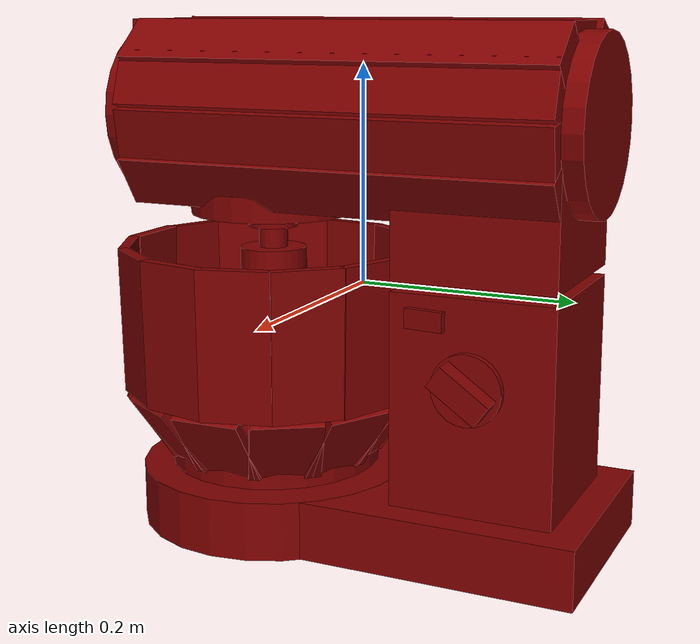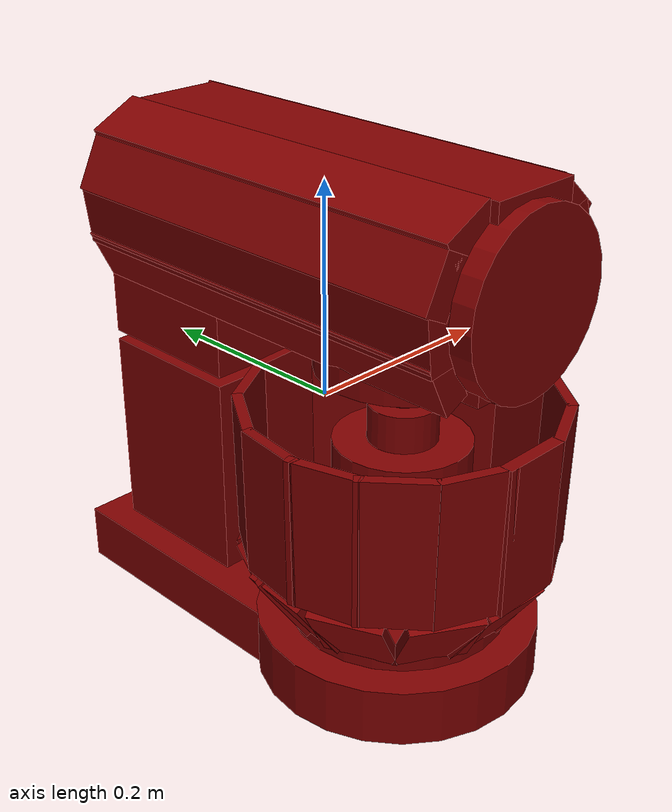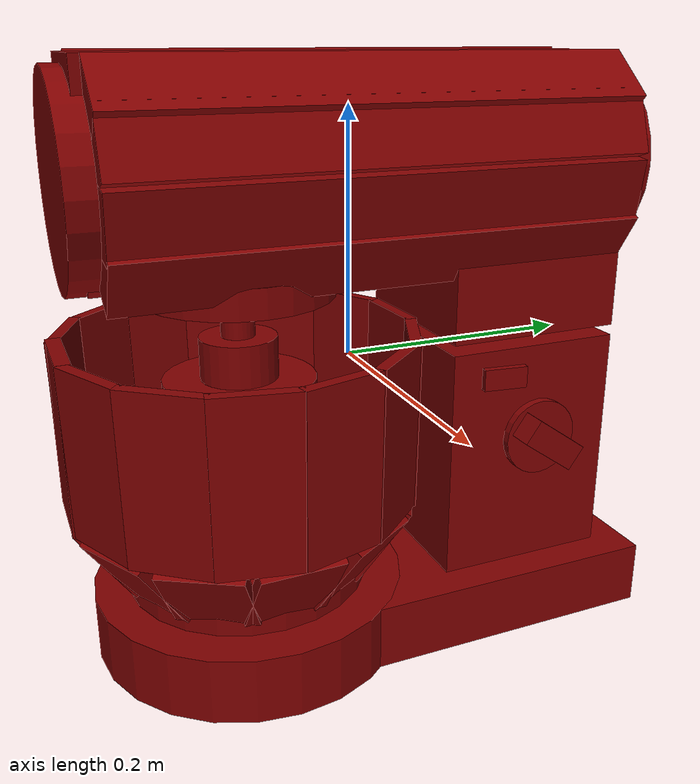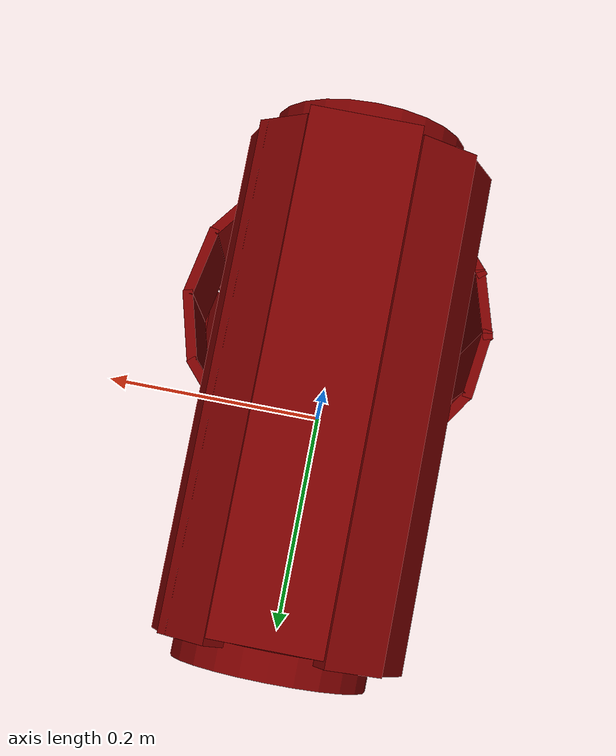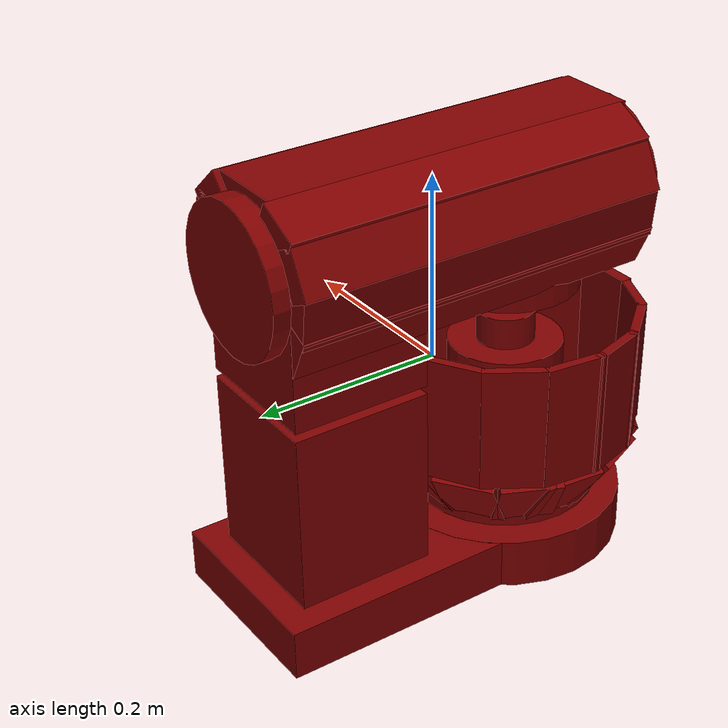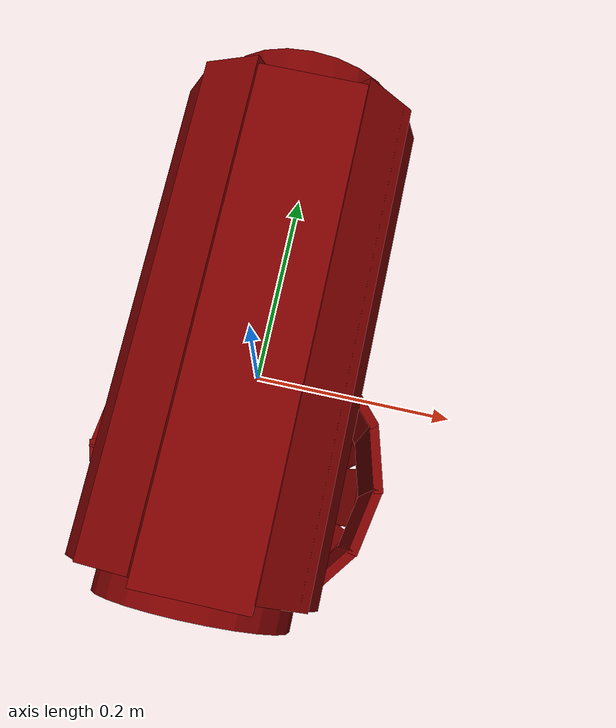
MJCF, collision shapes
<?xml version='1.0' encoding='UTF-8'?>
<mujoco model="model">
  <compiler angle="radian"/>
  <asset>
    <mesh file="visuals/Blender001.obj" name="Blender001_vis"/>
    <mesh file="visuals/Body001.obj" name="Body001_vis"/>
    <mesh file="visuals/Button001.obj" name="Button001_vis"/>
    <mesh file="visuals/Container001.obj" name="Container001_vis"/>
    <mesh file="visuals/Knob001.obj" name="Knob001_vis"/>
    <mesh file="visuals/Lid001.obj" name="Lid001_vis"/>
    <texture file="visuals/T_BC001.png" name="Body001_material" type="2d"/>
    <material name="Body001_material" rgba="1 1 1 1.0" texture="Body001_material" shininess="0.2" specular="2"/>
    <texture file="visuals/T_BC001.png" name="Button001_material" type="2d"/>
    <material name="Button001_material" rgba="1 1 1 1.0" texture="Button001_material" shininess="0.5" specular="0.8"/>
    <texture file="visuals/T_BC001.png" name="Container001_material" type="2d"/>
    <material name="Container001_material" rgba="1 1 1 1.0" texture="Container001_material" shininess="0.5" specular="2"/>
    <texture file="visuals/T_BC001.png" name="Knob001_material" type="2d"/>
    <material name="Knob001_material" rgba="1 1 1 1.0" texture="Knob001_material" shininess="0.5" specular="0.8"/>
    <texture file="visuals/T_BC001.png" name="Lid001_material" type="2d"/>
    <material name="Lid001_material" rgba="1 1 1 1.0" texture="Lid001_material" shininess="0.5" specular="0.8"/>
    <texture file="visuals/T_BC001.png" name="Blender001_material" type="2d"/>
    <material name="Blender001_material" rgba="1 1 1 1.0" texture="Blender001_material" shininess="0.5" specular="0.8"/>
  </asset>
  <default>
    <default class="visual">
      <geom conaffinity="0" contype="0" group="1" type="mesh"/>
    </default>
    <default class="collision">
      <geom group="0" rgba="0.5 0 0 0.5"/>
    </default>
    <default class="spawn">
      <geom group="0" rgba="1 1 1 0.5" contype="0" conaffinity="0"/>
      <site group="0" rgba="1 1 1 0.5"/>
    </default>
    <default class="region">
      <geom group="1" conaffinity="0" contype="0" rgba="0 1 0 0"/>
    </default>
  </default>
  <worldbody>
    <body>
      <body name="object">
        <geom mesh="Body001_vis" type="mesh" solimp="0.998 0.998 0.001" solref="0.001 1" density="100" friction="0.95 0.3 0.1" class="visual" material="Body001_material"/>
        <geom class="collision" type="box" pos="0.00042830861639231443 0.04095406085252762 -0.20840677618980408" size="0.10231997072696686 0.19477806985378265 0.02692364901304245" quat="1.0 0.0 0.0 0.0"/>
        <geom class="collision" type="cylinder" pos="0.00042829487938433886 -0.09266556054353714 -0.20847895741462708" size="0.1292576640844345 0.02709665149450302" quat="0.7071067094802856 0.0 0.0 -0.7071068286895752"/>
        <geom class="collision" type="box" pos="0.00042829872108995914 0.13292652368545532 -0.08653932809829712" size="0.07416944950819016 0.07416944205760956 0.09849468618631363" quat="1.0 0.0 0.0 0.0"/>
        <body name="Button001">
          <joint axis="-1.0 0.0 0.0" pos="0.08464374393224716 0.09656886756420135 -0.006045132875442505" limited="true" name="Button001_joint" range="0.0 0.01" type="slide" damping="1" frictionloss="1" armature=".01" stiffness="0.05"/>
          <geom mesh="Button001_vis" type="mesh" solimp="0.998 0.998 0.001" solref="0.001 1" density="100" friction="0.95 0.3 0.1" class="visual" material="Button001_material"/>
          <geom class="collision" type="box" pos="0.08847154676914215 0.09646552801132202 -0.0060764700174331665" size="0.01801537163555622 0.0029559654649347067 0.008721379563212395" quat="0.6639735102653503 0.0 0.0 -0.7477561235427856"/>
        </body>
        <body name="Container001">
          <joint axis="0.0 0.0 1.0" pos="4.6566128730773926e-09 -0.093948133289814 -0.0740344226360321" limited="true" name="Container001_joint" range="0.0 0.04" type="slide" damping="1" frictionloss="1" armature=".01" stiffness="0.05"/>
          <geom mesh="Container001_vis" type="mesh" solimp="0.998 0.998 0.001" solref="0.001 1" density="100" friction="0.95 0.3 0.1" class="visual" material="Container001_material"/>
          <geom class="collision" type="box" pos="-0.0014009366277605295 -0.23004084825515747 -0.03691582381725311" size="0.03309106081724167 0.005862479563802481 0.06824970990419388" quat="1.0 0.0 0.0 0.0"/>
          <geom class="collision" type="box" pos="0.059321485459804535 -0.21646621823310852 -0.03691582381725311" size="0.03309106081724167 0.004731183871626854 0.06818049401044846" quat="0.9734629988670349 0.008081321604549885 0.001898531918413937 0.22869397699832916"/>
          <geom class="collision" type="box" pos="0.10746504366397858 -0.17750805616378784 -0.03691582381725311" size="0.03309106081724167 0.0047311848029494286 0.06818049401044846" quat="0.8958461284637451 0.0074369776993989944 0.0036883021239191294 0.44428685307502747"/>
          <geom class="collision" type="box" pos="0.1332763135433197 -0.1215931698679924 -0.03691582381725311" size="0.03309106081724167 0.004731183871626854 0.06818049401044846" quat="0.7720226049423218 0.006409041583538055 0.005276019684970379 0.6355408430099487"/>
          <geom class="collision" type="box" pos="0.13192318379878998 -0.060564734041690826 -0.03691582381725311" size="0.03309106081724167 0.0047311848029494286 0.06818049401044846" quat="0.6097407937049866 0.005061837378889322 0.006579509936273098 0.792557418346405"/>
          <geom class="collision" type="box" pos="0.10307663679122925 -0.005169164389371872 -0.03691582381725311" size="0.03309106081724167 0.004731184337288141 0.06818049401044846" quat="0.4115123450756073 0.003416221123188734 0.007565817795693874 0.9113664031028748"/>
          <geom class="collision" type="box" pos="0.05359375849366188 0.031041176989674568 -0.03691582381725311" size="0.03309106081724167 0.004731184337288141 0.06818049401044846" quat="0.1955234557390213 0.0016231610206887126 0.008141097612679005 0.9806638956069946"/>
          <geom class="collision" type="box" pos="-0.007394769228994846 0.041808947920799255 -0.03691582381725311" size="0.03309106081724167 0.004731183871626854 0.06818049401044846" quat="0.032846517860889435 0.0002726792881730944 -0.008296854794025421 -0.9994259476661682"/>
          <geom class="collision" type="box" pos="-0.06706365197896957 0.024294385686516762 -0.03691582381725311" size="0.03309106081724167 0.004731183871626854 0.06818049401044846" quat="0.26041916012763977 0.0021618998143821955 -0.008014879189431667 -0.965459942817688"/>
          <geom class="collision" type="box" pos="-0.11256183683872223 -0.017736714333295822 -0.03691582381725311" size="0.03309106454253197 0.0047311848029494286 0.06818049401044846" quat="0.4733882248401642 0.0039298865012824535 -0.007312186062335968 -0.880814790725708"/>
          <geom class="collision" type="box" pos="-0.13466301560401917 -0.0752631425857544 -0.03691582381725311" size="0.03309105709195137 0.004731184337288141 0.06818049401044846" quat="0.6606002449989319 0.005484049674123526 -0.0062319557182490826 -0.7506919503211975"/>
          <geom class="collision" type="box" pos="-0.1308744251728058 -0.13087207078933716 -0.03691582381725311" size="0.03309106081724167 0.004731183871626854 0.06818049401044846" quat="0.8003837466239929 0.00664447620511055 -0.004976241383701563 -0.599430501461029"/>
          <geom class="collision" type="box" pos="-0.10403576493263245 -0.18157687783241272 -0.03691582381725311" size="0.03309106081724167 0.004731183871626854 0.06818049401044846" quat="0.9087879657745361 0.007544407155364752 -0.0034632314927875996 -0.41717568039894104"/>
          <geom class="collision" type="box" pos="-0.054557688534259796 -0.2185983955860138 -0.03691582381725311" size="0.03309105709195137 0.004731184337288141 0.06818049401044846" quat="0.9797907471656799 0.008133845403790474 -0.0016591019229963422 -0.19985289871692657"/>
          <geom class="collision" type="box" pos="-0.007475210353732109 -0.2087996006011963 -0.1368081122636795" size="0.03309106081724167 0.004731183871626854 0.037795037031173706" quat="0.9543789029121399 0.2974259853363037 -0.00786439049988985 -0.025235220789909363"/>
          <geom class="collision" type="box" pos="0.054474182426929474 -0.1944655179977417 -0.1368081122636795" size="0.03309106081724167 0.004731183871626854 0.037795037031173706" quat="0.9241242408752441 0.28799739480018616 0.07471015304327011 0.23972956836223602"/>
          <geom class="collision" type="box" pos="0.09834898263216019 -0.1511295735836029 -0.1368081122636795" size="0.03309106081724167 0.004731183871626854 0.037795037031173706" quat="0.8259434103965759 0.2573999762535095 0.1492292284965515 0.47884589433670044"/>
          <geom class="collision" type="box" pos="0.1135195642709732 -0.09175466746091843 -0.1368081122636795" size="0.033091071993112564 0.004731183871626854 0.037795037031173706" quat="0.6684057116508484 0.208304300904274 0.21244624257087708 0.6816961765289307"/>
          <geom class="collision" type="box" pos="0.09546875953674316 -0.03214576095342636 -0.1368081122636795" size="0.03309106081724167 0.0047311848029494286 0.037795037031173706" quat="0.45871785283088684 0.14295648038387299 0.26093590259552 0.837289571762085"/>
          <geom class="collision" type="box" pos="0.053226616233587265 0.007114522159099579 -0.1368081122636795" size="0.03309106081724167 0.004731184337288141 0.037795037031173706" quat="0.23400573432445526 0.07292637228965759 0.2884542942047119 0.9255901575088501"/>
          <geom class="collision" type="box" pos="-0.006050604395568371 0.020831264555454254 -0.1368081122636795" size="0.03309105709195137 0.0047311848029494286 0.037795037031173706" quat="0.019314346835017204 0.006019193213433027 -0.2974691092967987 -0.9545170664787292"/>
          <geom class="collision" type="box" pos="-0.06648921221494675 0.0007209330797195435 -0.1368081122636795" size="0.03309106081724167 0.004731183871626854 0.037795037031173706" quat="0.28303512930870056 0.08820606768131256 -0.2841545343399048 -0.9117932915687561"/>
          <geom class="collision" type="box" pos="-0.11573822051286697 -0.08223489671945572 -0.1368081122636795" size="0.03309106081724167 0.004731183871626854 0.037795037031173706" quat="0.6395477652549744 0.1993110179901123 -0.22090552747249603 -0.7088403105735779"/>
          <geom class="collision" type="box" pos="-0.10655508935451508 -0.14043349027633667 -0.1368081122636795" size="0.03309106454253197 0.0047311848029494286 0.037795037031173706" quat="0.7998585104942322 0.2492707520723343 -0.16244442760944366 -0.5212506651878357"/>
          <geom class="collision" type="box" pos="-0.06049831584095955 -0.1926041543483734 -0.1368081122636795" size="0.03309106454253197 0.0047311848029494286 0.037795037031173706" quat="0.9201226234436035 0.28675028681755066 -0.07936228811740875 -0.25465720891952515"/>
          <geom class="collision" type="box" pos="-0.10489986836910248 -0.04401928931474686 -0.1368081122636795" size="0.03309106454253197 0.004731183871626854 0.037795037031173706" quat="0.5074445009231567 0.15814179182052612 -0.2520224452018738 -0.8086878061294556"/>
          <geom class="collision" type="cylinder" pos="4.211673513054848e-06 -0.09395257383584976 -0.1694784164428711" size="0.10042182356119156 0.010085941292345524" quat="0.7071065902709961 0.0 0.0 -0.7071069478988647"/>
        </body>
        <body name="Knob001">
          <joint axis="-1.0 0.0 0.0" pos="0.08752287179231644 0.13416588306427002 -0.06277215480804443" limited="true" name="Knob001_joint" range="0.0 4.991641660703782" type="hinge" damping="0.05" armature="0.001"/>
          <geom mesh="Knob001_vis" type="mesh" solimp="0.998 0.998 0.001" solref="0.001 1" density="100" friction="0.95 0.3 0.1" class="visual" material="Knob001_material"/>
          <geom class="collision" type="cylinder" pos="0.08560414612293243 0.13412246108055115 -0.06337134540081024" size="0.03172425180673599 0.0033612628467381" quat="0.4999999701976776 0.5 -0.5 -0.5"/>
          <geom class="collision" type="box" pos="0.09973051398992538 0.13416588306427002 -0.06277215480804443" size="0.010161630809307098 0.026035785675048828 0.011017017997801304" quat="0.9537169337272644 -0.30070579051971436 -6.67700984546192e-17 -1.735475256039727e-24"/>
        </body>
        <body name="Lid001">
          <joint axis="-1.0 0.0 0.0" pos="-1.9767321646213531e-07 0.20729850232601166 0.014160387217998505" limited="true" name="Lid001_joint" range="0.0 1.5707963267948966" type="hinge" damping="1" frictionloss="1" armature=".01" stiffness="0.05"/>
          <geom mesh="Lid001_vis" type="mesh" solimp="0.998 0.998 0.001" solref="0.001 1" density="100" friction="0.95 0.3 0.1" class="visual" material="Lid001_material"/>
          <geom class="collision" type="box" pos="0.0074674952775239944 -0.004293609410524368 0.21594326198101044" size="0.04416288807988167 0.20512086153030396 0.02239714004099369" quat="1.0 0.0 0.0 0.0"/>
          <geom class="collision" type="box" pos="-0.0027395058423280716 -0.004293613135814667 0.10209592431783676" size="0.04416288807988167 0.20512086153030396 0.02239714004099369" quat="1.0 0.0 0.0 0.0"/>
          <geom class="collision" type="box" pos="0.07048700749874115 0.0023485422134399414 0.09924248605966568" size="0.02494754083454609 0.20430146157741547 0.012652105651795864" quat="0.8755977749824524 3.2488897368839614e-15 -0.4830409586429596 1.6533794777728872e-08"/>
          <geom class="collision" type="box" pos="0.08195534348487854 0.0023485422134399414 0.13608293235301971" size="0.02494754083454609 0.20430146157741547 0.012652106583118439" quat="0.7592135071754456 1.544575590746531e-15 -0.6508416533470154 2.2277363953548956e-08"/>
          <geom class="collision" type="box" pos="0.07898087054491043 0.0023485422134399414 0.18389666080474854" size="0.02494754083454609 0.20430146157741547 0.012652107514441013" quat="0.5864487886428833 5.302158587400588e-15 -0.8099862933158875 2.7724652795768634e-08"/>
          <geom class="collision" type="box" pos="0.06274599581956863 0.0023485422134399414 0.2126481831073761" size="0.02494754083454609 0.20430146157741547 0.012652109377086163" quat="0.3527843654155731 5.9857705035258005e-15 -0.9357046484947205 3.202781329036952e-08"/>
          <geom class="collision" type="box" pos="-0.05434684827923775 0.0023485347628593445 0.21722880005836487" size="0.02494754083454609 0.20430144667625427 0.012652109377086163" quat="0.23273374140262604 5.161706548702195e-16 0.9725404977798462 -3.328864650598007e-08"/>
          <geom class="collision" type="box" pos="-0.07990510016679764 0.0023485422134399414 0.18492580950260162" size="0.02494754083454609 0.20430146157741547 0.012652109377086163" quat="0.5281650424003601 1.0006923471827557e-14 0.8491417169570923 -2.9064876727602496e-08"/>
          <geom class="collision" type="box" pos="-0.08394889533519745 0.0023485347628593445 0.1427813470363617" size="0.02494753897190094 0.20430144667625427 0.012652105651795864" quat="0.749638557434082 -1.6468221236557237e-14 0.6618474721908569 -2.2654118581044713e-08"/>
          <geom class="collision" type="box" pos="-0.0734761655330658 0.0023485422134399414 0.10737738013267517" size="0.02494754083454609 0.20430146157741547 0.012652106583118439" quat="0.8473573923110962 -1.795064747886488e-14 0.5310230255126953 -1.8176178784301555e-08"/>
          <geom class="collision" type="cylinder" pos="0.0017984770238399506 0.21352113783359528 0.1523144394159317" size="0.07908689975738525 0.011399760842323303" quat="0.7071067094802856 0.7071068286895752 0.0 0.0"/>
          <geom class="collision" type="cylinder" pos="0.0017984770238399506 -0.21152974665164948 0.1523144394159317" size="0.07908689975738525 0.011399760842323303" quat="0.7071067094802856 0.7071068286895752 0.0 0.0"/>
          <geom class="collision" type="box" pos="0.00042829872108995914 0.13292652368545532 0.07294712960720062" size="0.07416944950819016 0.07416944205760956 0.05224031209945679" quat="1.0 0.0 0.0 0.0"/>
          <geom class="collision" type="cylinder" pos="0.0003095865249633789 -0.0942579135298729 0.053772490471601486" size="0.023545408621430397 0.006831387057900429" quat="1.0 0.0 0.0 0.0"/>
          <geom class="collision" type="cylinder" pos="0.0003095865249633789 -0.0935337170958519 0.07235226035118103" size="0.07699170708656311 0.011632343754172325" quat="1.0 0.0 0.0 0.0"/>
          <body name="Blender001">
            <joint axis="0.0 0.0 1.0" pos="2.6226043701171875e-05 -0.09394791722297668 -0.046446189284324646" limited="false" name="Blender001_joint" range="0 360" type="hinge" damping="1" frictionloss="1" armature=".01" stiffness="0.05"/>
            <geom mesh="Blender001_vis" type="mesh" solimp="0.998 0.998 0.001" solref="0.001 1" density="100" friction="0.95 0.3 0.1" class="visual" material="Blender001_material"/>
            <geom class="collision" type="cylinder" pos="0.0003095865249633789 -0.09400665014982224 0.03387758135795593" size="0.013519562780857086 0.016841044649481773" quat="1.0 0.0 0.0 0.0"/>
            <geom class="collision" type="cylinder" pos="0.0003095865249633789 -0.09400665014982224 -0.011727426201105118" size="0.03116130828857422 0.03881700709462166" quat="1.0 0.0 0.0 0.0"/>
            <geom class="collision" type="cylinder" pos="0.0003095865249633789 -0.09400665014982224 -0.05714580416679382" size="0.06160912662744522 0.05011708661913872" quat="1.0 0.0 0.0 0.0"/>
          </body>
        </body>
        <geom class="region" name="reg_main" type="box" pos="-1.2446194887161255e-05 0.0031806975603103638 0.0" size="0.12889385223388672 0.23259560763835907 0.23753134906291962"/>
      </body>
    </body>
  </worldbody>
  <actuator>
    <motor name="Button001_joint_actuator" joint="Button001_joint" gear="0.5"/>
    <motor name="Container001_joint_actuator" joint="Container001_joint" gear="10"/>
    <motor name="Knob001_joint_actuator" joint="Knob001_joint" gear="10"/>
    <motor name="Lid001_joint_actuator" joint="Lid001_joint" gear="10"/>
    <motor name="Blender001_joint_actuator" joint="Blender001_joint" gear="10"/>
  </actuator>
</mujoco>
